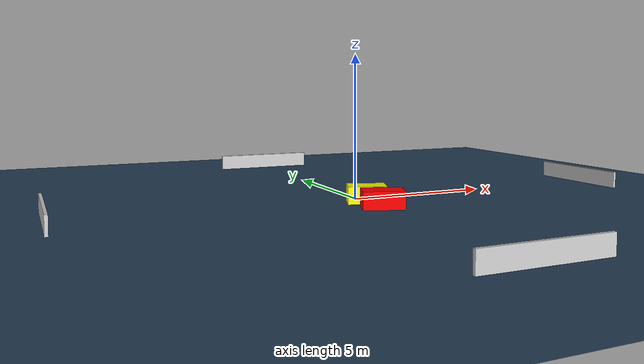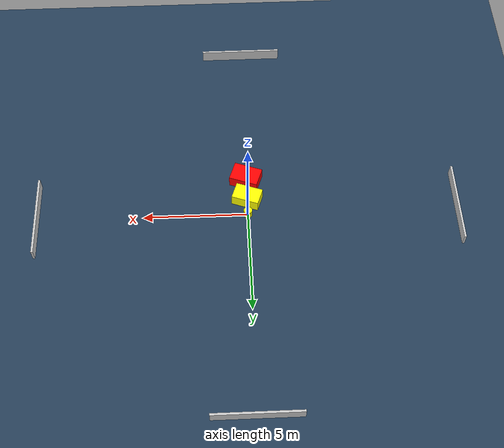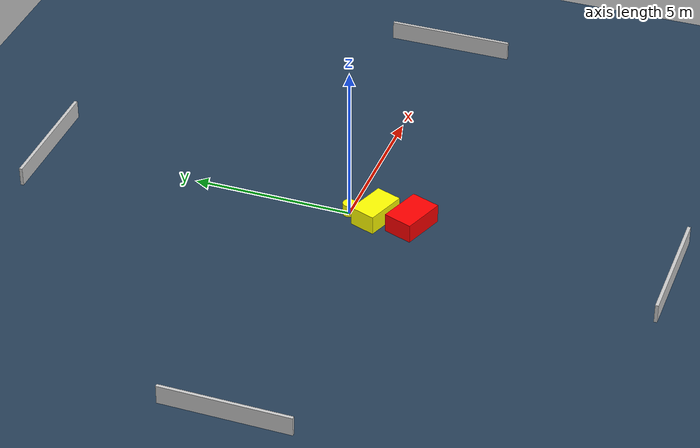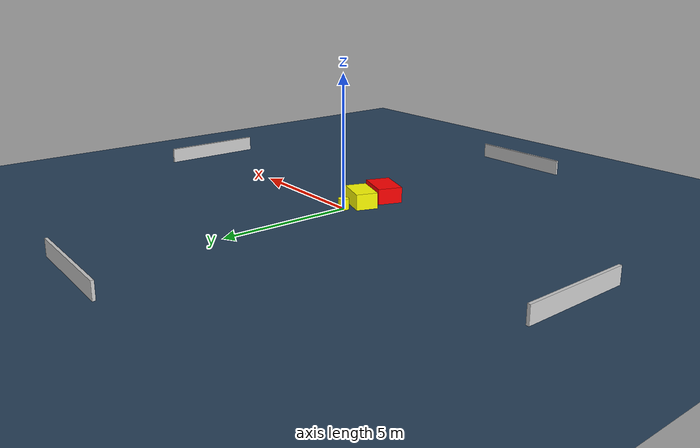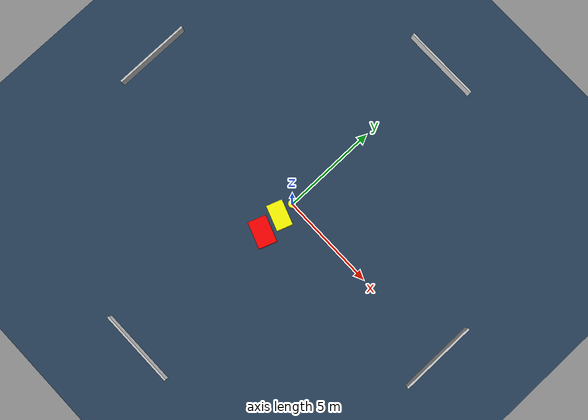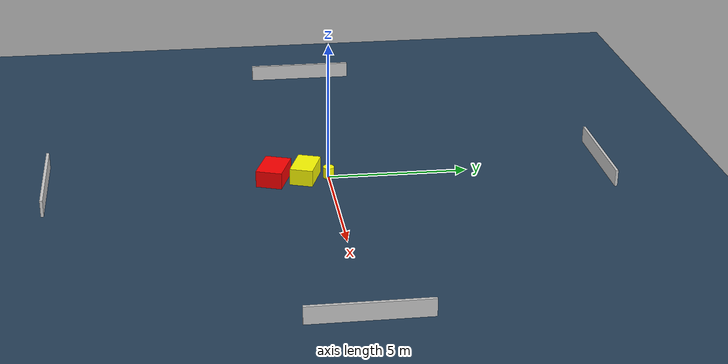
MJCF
<?xml version="1.0" ?>
<mujoco model="generated_environment">
  <option timestep="0.01" integrator="RK4" cone="elliptic"/>
  <default>
    <geom density="1"/>
  </default>
  <asset>
    <texture builtin="gradient" height="3072" name="skybox" rgb1="0.3 0.5 0.7" rgb2="0 0 0" type="skybox" width="512"/>
    <texture builtin="checker" height="300" name="groundplane" rgb1="0.2 0.3 0.4" rgb2="0.1 0.2 0.3" type="2d" width="300"/>
    <material name="groundplane" reflectance="0.2" texrepeat="5 5" texture="groundplane"/>
  </asset>
  <worldbody>
    <light dir="0 0 -1" directional="true" pos="0 0 1.5"/>
    <geom condim="3" friction="0.5 0.005 0.001" material="groundplane" name="floor" pos="0 0 0" size="0 0 0.05" type="plane"/>
    <body name="walls">
      <geom name="wall_1" condim="4" pos="-10.0 0.0 0.3" rgba="0.800000011920929 0.800000011920929 0.800000011920929 1.0" size="0.05 2.0 0.3" type="box"/>
      <geom name="wall_2" condim="4" pos="10.0 0.0 0.3" rgba="0.800000011920929 0.800000011920929 0.800000011920929 1.0" size="0.05 2.0 0.3" type="box"/>
      <geom name="wall_3" condim="4" pos="0.0 -10.0 0.3" rgba="0.800000011920929 0.800000011920929 0.800000011920929 1.0" size="2.0 0.05 0.3" type="box"/>
      <geom name="wall_4" condim="4" pos="0.0 10.0 0.3" rgba="0.800000011920929 0.800000011920929 0.800000011920929 1.0" size="2.0 0.05 0.3" type="box"/>
    </body>
    <body name="robot">
      <joint name="joint_x" type="slide" pos="0 0 0" axis="1 0 0"/>
      <joint name="joint_y" type="slide" pos="0 0 0" axis="0 1 0"/>
      <geom name="robot" type="cylinder" pos="0.0 0.0 0.2" size="0.2 0.2 0.0" mass="5.0" friction="1.0 0.005 0.0001" condim="4" rgba="1.0 1.0 0.0 1.0"/>
    </body>
    <body name="obstacle_1_movable">
      <geom name="obstacle_1_movable" condim="4" pos="0.0020691861057359844 -0.8369201084841003 0.3" euler="0 0 340.3651229371932" friction="0.0 0.005 0.001" rgba="1.0 1.0 0.0 1.0" size="0.6513434454613258 0.4119669643983669 0.3" type="box" mass="0.1"/>
      <joint type="free"/>
    </body>
    <body name="obstacle_2_static">
      <geom name="obstacle_2_static" condim="4" pos="0.029182925382855995 -1.9762065873219326 0.3" euler="0 0 70.16974376720165" friction="0.0 0.005 0.001" rgba="1.0 0.0 0.0 1.0" size="0.46743744017982897 0.687217634646616 0.3" type="box"/>
    </body>
  </worldbody>
  <actuator>
    <motor name="actuator_x" joint="joint_x" gear="1" ctrlrange="-1 1"/>
    <motor name="actuator_y" joint="joint_y" gear="1" ctrlrange="-1 1"/>
  </actuator>
</mujoco>
